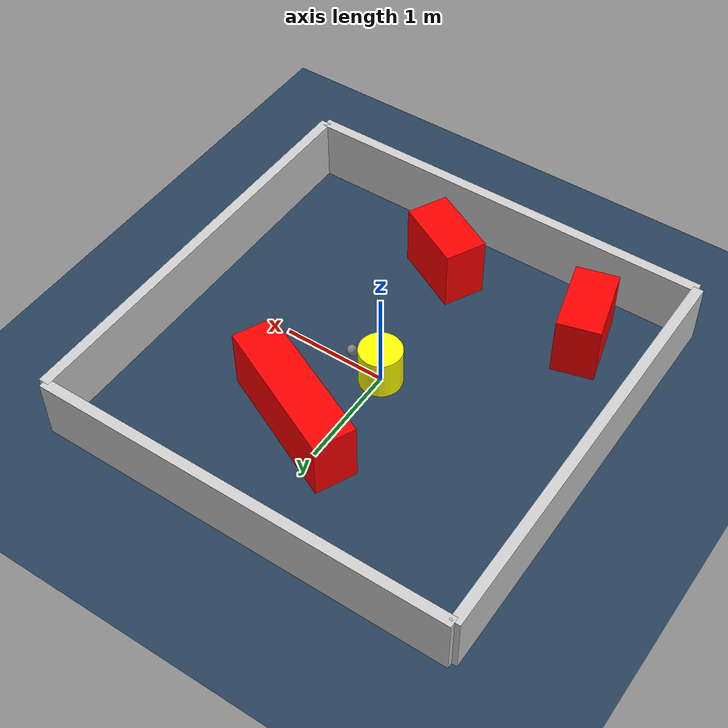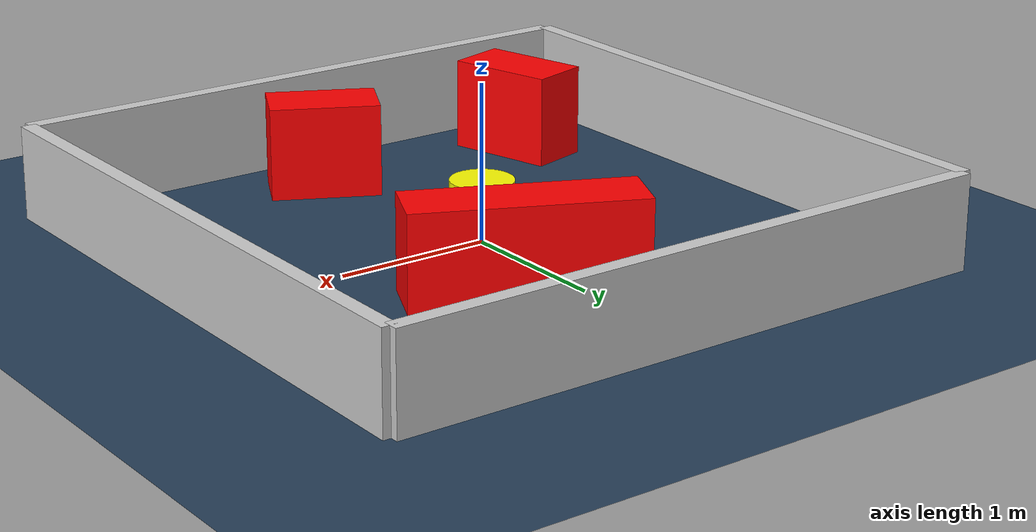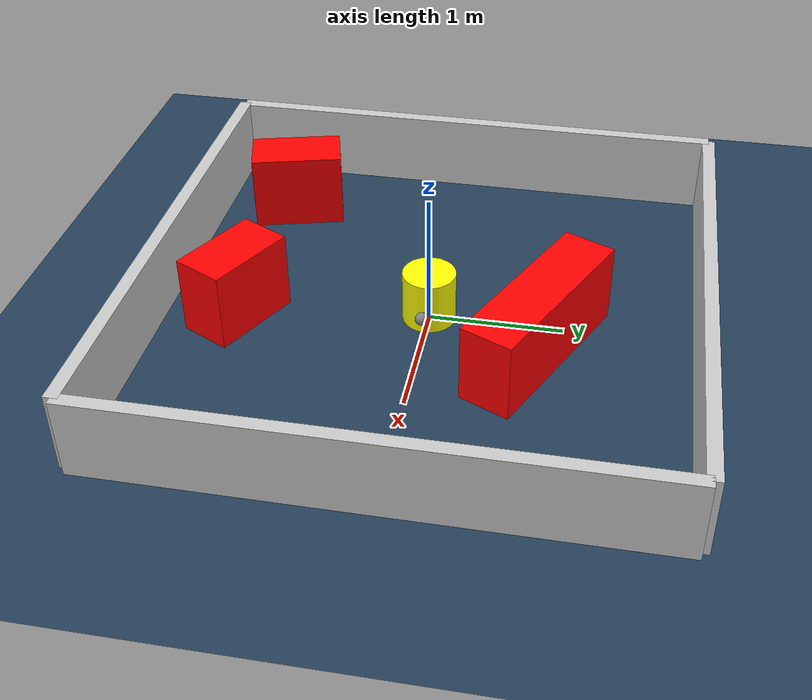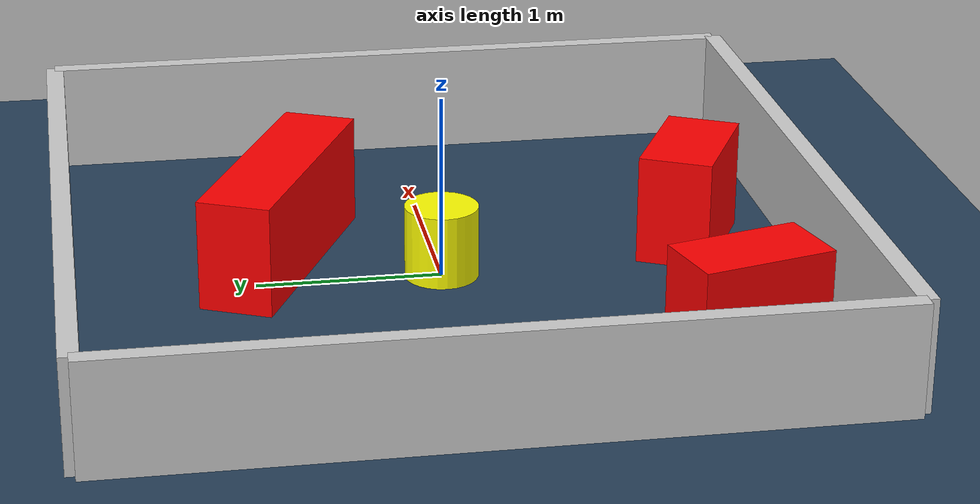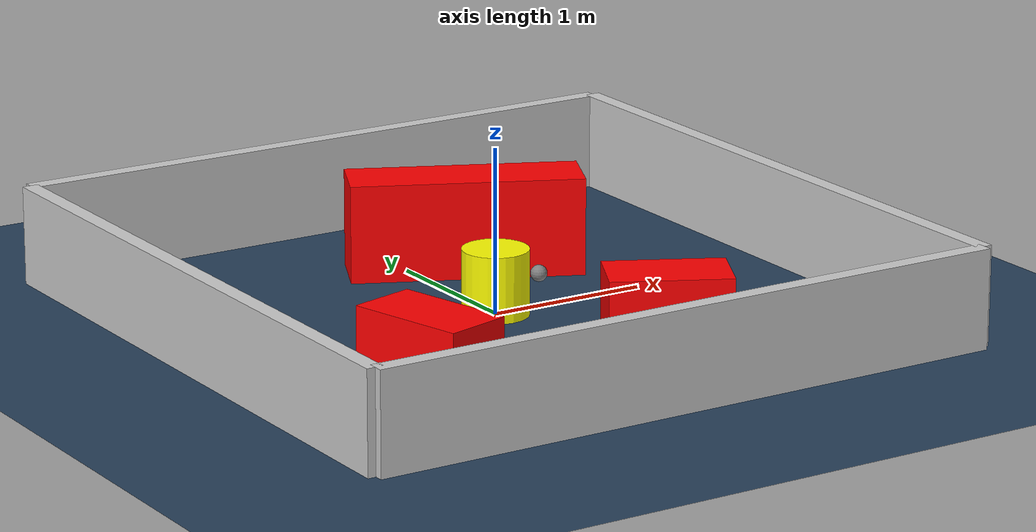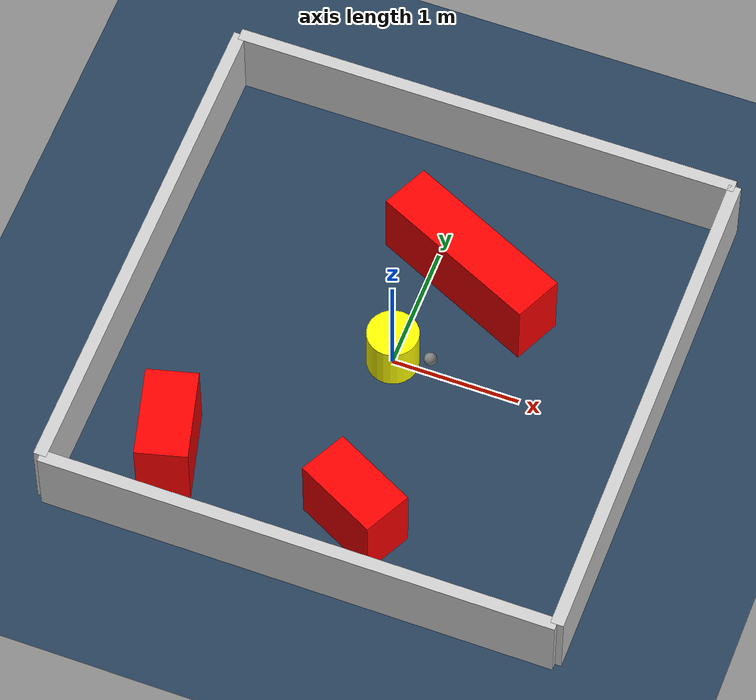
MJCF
<?xml version="1.0" ?>
<mujoco model="generated_environment">
  <option timestep="0.01" integrator="RK4" cone="elliptic"/>
  <default>
    <geom density="1"/>
  </default>
  <asset>
    <texture builtin="gradient" height="3072" rgb1="0.3 0.5 0.7" rgb2="0 0 0" type="skybox" width="512"/>
    <texture builtin="checker" height="300" mark="edge" markrgb="0.8 0.8 0.8" name="groundplane" rgb1="0.2 0.3 0.4" rgb2="0.1 0.2 0.3" type="2d" width="300"/>
    <material name="groundplane" reflectance="0.2" texrepeat="5 5" texture="groundplane" texuniform="true"/>
    <material name="robot" rgba="0.0 1.0 0.0 1"/>
  </asset>
  <worldbody>
    <light dir="0 0 -1" directional="true" pos="0 0 1.5"/>
    <geom condim="4" friction="1.0 0.005 0.001" material="groundplane" name="floor" size="0 0 0.05" type="plane"/>
    <body name="walls">
      <geom name="wall_1" condim="4" pos="-2.0 0.0 0.3" rgba="0.800000011920929 0.800000011920929 0.800000011920929 1.0" size="0.05 2.0 0.3" type="box"/>
      <geom name="wall_2" condim="4" pos="2.0 0.0 0.3" rgba="0.800000011920929 0.800000011920929 0.800000011920929 1.0" size="0.05 2.0 0.3" type="box"/>
      <geom name="wall_3" condim="4" pos="0.0 -2.0 0.3" rgba="0.800000011920929 0.800000011920929 0.800000011920929 1.0" size="2.0 0.05 0.3" type="box"/>
      <geom name="wall_4" condim="4" pos="0.0 2.0 0.3" rgba="0.800000011920929 0.800000011920929 0.800000011920929 1.0" size="2.0 0.05 0.3" type="box"/>
    </body>
    <body name="robot">
      <joint name="joint_x" type="slide" pos="0 0 0" axis="1 0 0"/>
      <joint name="joint_y" type="slide" pos="0 0 0" axis="0 1 0"/>
      <geom name="robot" type="sphere" pos="0.3 0.0 0.2" size="0.05" mass="5." friction="1.0 0.005 0.0001" condim="4" rgba="0.5 0.5 0.5 1.0"/>
      <site name="sensor_ball"/>
    </body>
    <body name="obstacle_movable_1">
      <geom name="obstacle_movable_1" condim="4" pos="0.0 0.0 0.2" euler="0 0 0.0" friction="1.0 0.005 0.001" rgba="1.0 1.0 0.0 1.0" size="0.2 0.2 0.0" type="cylinder" mass="0.1"/>
      <joint type="free"/>
    </body>
    <body name="obstacle_2_static">
      <geom name="obstacle_2_static" condim="4" pos="0.31091203250847155 0.8390831964804708 0.3" euler="0 0 335.0930240281555" friction="1.0 0.005 0.001" rgba="1 0 0 1" size="0.7063228164981254 0.2 0.3" type="box"/>
    </body>
    <body name="obstacle_3_static">
      <geom name="obstacle_3_static" condim="4" pos="-1.2673484919237634 -1.3420071343068474 0.3" euler="0 0 285.0032048764929" friction="1.0 0.005 0.001" rgba="1 0 0 1" size="0.3603643442784138 0.2 0.3" type="box"/>
    </body>
    <body name="obstacle_4_static">
      <geom name="obstacle_4_static" condim="4" pos="0.23517463358127833 -1.4122413336280353 0.3" euler="0 0 153.0272463414555" friction="1.0 0.005 0.001" rgba="1 0 0 1" size="0.35147547744150953 0.2 0.3" type="box"/>
    </body>
  </worldbody>
  <actuator>
    <motor name="actuator_x" joint="joint_x" gear="1" ctrlrange="-1 1"/>
    <motor name="actuator_y" joint="joint_y" gear="1" ctrlrange="-1 1"/>
  </actuator>
</mujoco>
